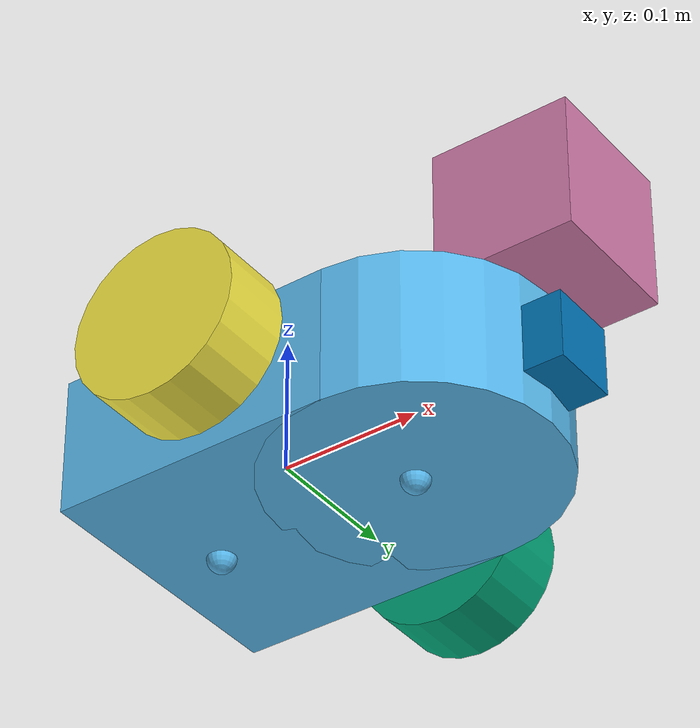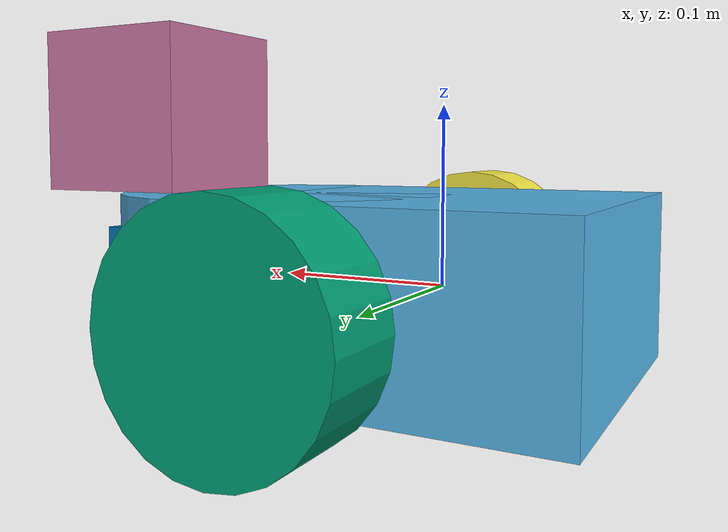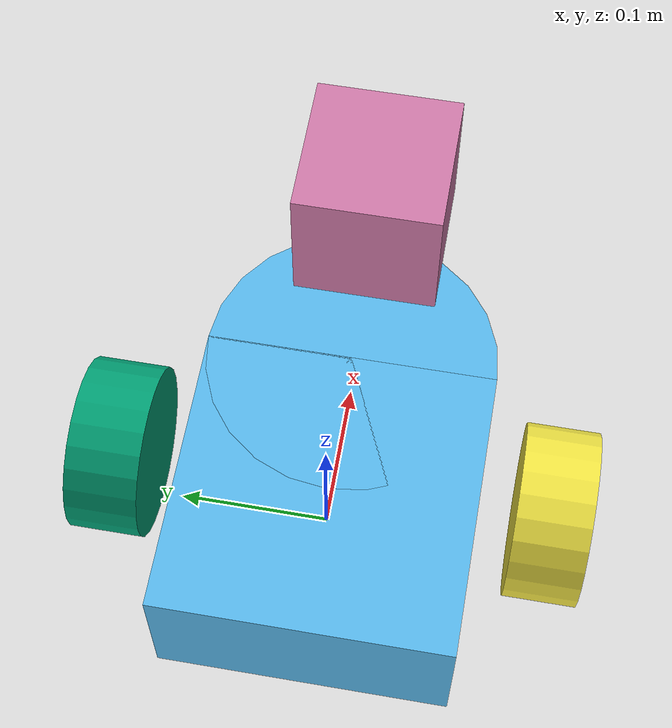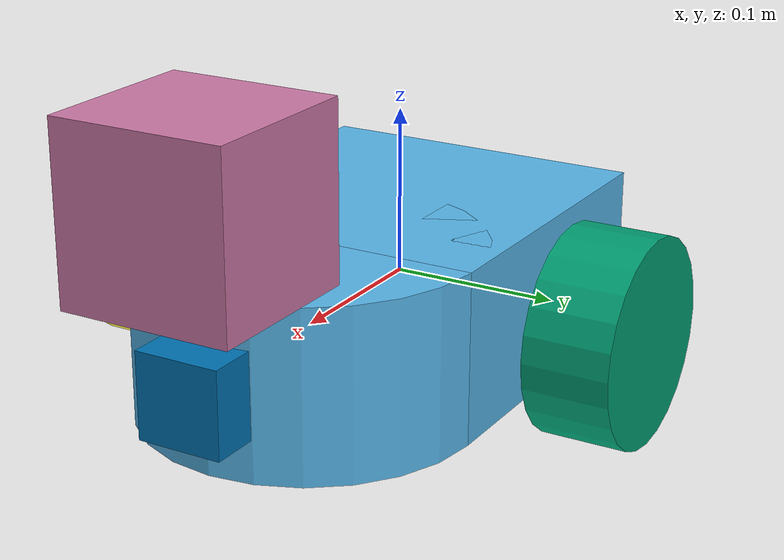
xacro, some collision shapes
<?xml version='1.0'?>
<robot name="slam_bot" xmlns:xacro="http://www.ros.org/wiki/xacro">

  <xacro:include filename="$(find slam_project)/urdf/udacity_bot.gazebo" />

  <link name="robot_footprint"></link>

  <joint name="robot_footprint_joint" type="fixed">
    <origin xyz="0 0 0" rpy="0 0 0" />
    <parent link="robot_footprint"/>
    <child link="chassis" />
  </joint>

  <link name='chassis'>
    <pose>0 0 0.1 0 0 0</pose>

    <inertial>
      <mass value="15.0"/>
      <origin xyz="0.0 0 0" rpy=" 0 0 0"/>
      <inertia
          ixx="0.1" ixy="0" ixz="0"
          iyy="0.1" iyz="0"
          izz="0.1"
      />
    </inertial>

    <collision name='collision'>
      <origin xyz="0 0 0" rpy=" 0 0 0"/>
      <geometry>
        <box size=".2 .2 .1"/>
      </geometry>
    </collision>

    <visual name='chassis_visual'>
      <origin xyz="0 0 0" rpy=" 0 0 0"/>
      <geometry>
        <box size=".2 .2 .1"/>
      </geometry>
    </visual>

    <collision name='bumper'>
      <origin xyz=".1 0 0" rpy="0 0 0"/>
      <geometry>
        <cylinder radius=".1" length=".1"/>
      </geometry>
    </collision>

    <visual name='bumper'>
      <origin xyz=".1 0 0" rpy="0 0 0"/>
      <geometry>
        <cylinder radius=".1" length=".1"/>
      </geometry>
    </visual>

    <collision name='back_caster_collision'>
      <origin xyz="-0.05 0 -0.05" rpy=" 0 0 0"/>
      <geometry>
        <sphere radius="0.01"/>
      </geometry>
      <surface>
        <friction>
          <ode>
            <mu>0</mu>
            <mu2>0</mu2>
            <slip1>1.0</slip1>
            <slip2>1.0</slip2>
          </ode>
        </friction>
      </surface>
    </collision>

    <visual name='back_caster_visual'>
      <origin xyz="-0.05 0 -0.05" rpy=" 0 0 0"/>
      <geometry>
        <sphere radius="0.01"/>
      </geometry>
    </visual>

    <collision name='front_caster_collision'>
      <origin xyz="0.1 0 -0.05" rpy=" 0 0 0"/>
      <geometry>
        <sphere radius="0.01"/>
      </geometry>
      <surface>
        <friction>
          <ode>
            <mu>0</mu>
            <mu2>0</mu2>
            <slip1>1.0</slip1>
            <slip2>1.0</slip2>
          </ode>
        </friction>
      </surface>
    </collision>

    <visual name='front_caster_visual'>
      <origin xyz="0.1 0 -0.05" rpy=" 0 0 0"/>
      <geometry>
        <sphere radius="0.01"/>
      </geometry>
    </visual>

  </link>

  <link name='left_wheel'>

    <inertial>
      <mass value="5.0"/>
      <origin xyz="0 0 0" rpy=" 0 1.5707 1.5707"/>
      <inertia
          ixx="0.1" ixy="0" ixz="0"
          iyy="0.1" iyz="0"
          izz="0.1"
      />
    </inertial>

    <collision name='left_wheel_collision'>
      <origin xyz="0 0 0" rpy=" 0 1.5707 1.5707"/>
      <geometry>
        <cylinder radius=".06" length=".05"/>
      </geometry>
    </collision>

    <visual name='left_wheel_visual'>
      <origin xyz="0 0 0" rpy=" 0 1.5707 1.5707"/>
      <geometry>
        <cylinder radius=".06" length=".05"/>
      </geometry>
    </visual>
  </link>

  <joint type="continuous" name="left_wheel_hinge">
    <origin xyz="0.03 0.15 0" rpy="0 0 0"/>
    <child link="left_wheel"/>
    <parent link="chassis"/>
    <axis xyz="0 1 0" rpy="0 0 0"/>
    <limit effort="10000" velocity="1000"/>
    <joint_properties damping="1.0" friction="1.0"/>
  </joint>

  <link name='right_wheel'>

    <inertial>
      <mass value="5.0"/>
      <origin xyz="0 0 0" rpy=" 0 1.5707 1.5707"/>
      <inertia
          ixx="0.1" ixy="0" ixz="0"
          iyy="0.1" iyz="0"
          izz="0.1"
      />
    </inertial>

    <collision name='right_wheel_collision'>
      <origin xyz="0 0 0" rpy=" 0 1.5707 1.5707"/>
      <geometry>
        <cylinder radius=".06" length=".05"/>
      </geometry>
    </collision>

    <visual name='right_wheel_visual'>
      <origin xyz="0 0 0" rpy=" 0 1.5707 1.5707"/>
      <geometry>
        <cylinder radius=".06" length=".05"/>
      </geometry>
    </visual>
  </link>

  <joint type="continuous" name="right_wheel_hinge">
    <origin xyz="0.03 -0.15 0" rpy="0 0 0"/>
    <child link="right_wheel"/>
    <parent link="chassis"/>
    <axis xyz="0 1 0" rpy="0 0 0"/>
    <limit effort="10000" velocity="1000"/>
    <joint_properties damping="1.0" friction="1.0"/>
  </joint>

  <link name='camera_link'>

    <inertial>
      <mass value=".1"/>
      <origin xyz="0 0 0" rpy=" 0 0 0"/>
      <inertia
          ixx="1e-6" ixy="0" ixz="0"
          iyy="1e-6" iyz="0"
          izz="1e-6"
      />
    </inertial>

    <collision name='camera_link_collision'>
      <origin xyz="0 0 0" rpy=" 0 0 0"/>
      <geometry>
        <box size=".05 .05 .05"/>
      </geometry>
    </collision>

    <visual name='camera_link_visual'>
      <origin xyz="0 0 0" rpy=" 0 0 0"/>
      <geometry>
        <box size=".05 .05 .05"/>
      </geometry>
    </visual>
  </link>

  <joint type="fixed" name="camera_link_joint">
    <origin xyz="0.2 0 0" rpy="0 0 0"/>
    <child link="camera_link"/>
    <parent link="chassis"/>
  </joint>

  <joint name="camera_joint" type="fixed">
   <origin xyz="0 0 0" rpy="-1.5707 0 -1.5707"/>
   <parent link="camera_link"/>
   <child link="camera_rgbd_frame"/>
  </joint>

  <link name="camera_rgbd_frame"/>

  <link name='hokuyo'>

    <inertial>
      <mass value=".1"/>
      <origin xyz="0 0 0" rpy=" 0 0 0"/>
      <inertia
          ixx="1e-6" ixy="0" ixz="0"
          iyy="1e-6" iyz="0"
          izz="1e-6"
      />
    </inertial>

    <collision name='hokuyo_collision'>
      <origin xyz="0 0 0" rpy=" 0 0 0"/>
      <geometry>
        <box size=".1 .1 .1"/>
      </geometry>
    </collision>

    <visual name='hokuyo_visual'>
      <origin xyz="0 0 0" rpy=" 0 0 0"/>
      <geometry>
        <mesh filename="package://slam_project/meshes/hokuyo.dae"/>
      </geometry>
    </visual>
  </link>

  <joint type="fixed" name="hokuyo_joint">
    <origin xyz="0.2 0 .1" rpy="0 0 0"/>
    <child link="hokuyo"/>
    <parent link="chassis"/>
  </joint>

</robot>
